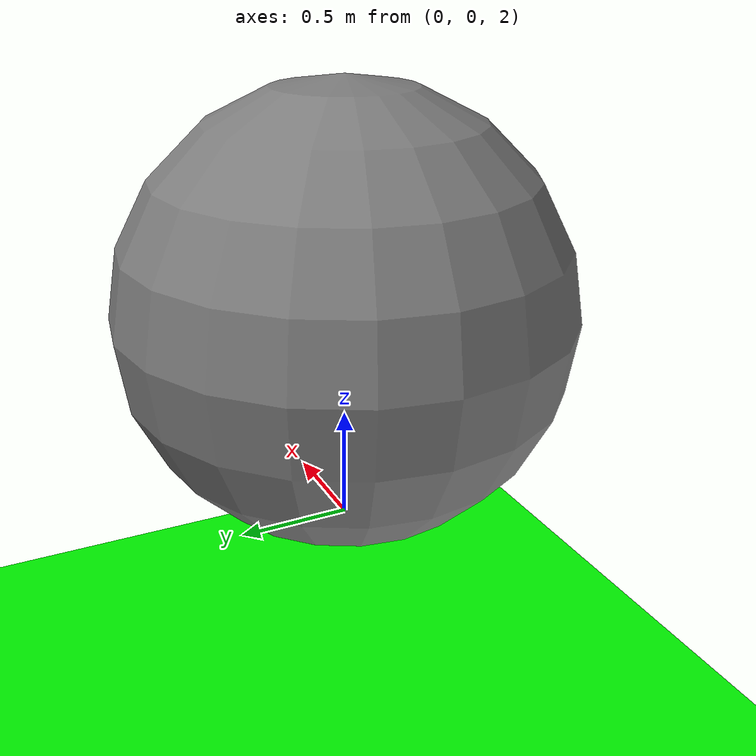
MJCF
<?xml version="1.0" ?>
    <mujoco>
        <option timestep="0.002" />
        <worldbody>
            <body name="sphere" pos="0 0 3">
                <geom mass = "5" size="1 1 1" type="sphere" condim = "1" solimp="0.99 0.99 0.01" solref="0.01 1" priority="0" name="sphere"/>
                <joint axis="0 0 1" name="free_ball" type="free"/>
            </body>
            <body name="floor" pos="0 0 0">
                <geom mass = "1" condim="1" size="5.0 5.0 1" rgba="0 1 0 1" type="box" solimp="0.99 0.99 0.01" solref="-100 -20" priority="1" name="floor"/>
            </body>
        </worldbody>
    </mujoco>
